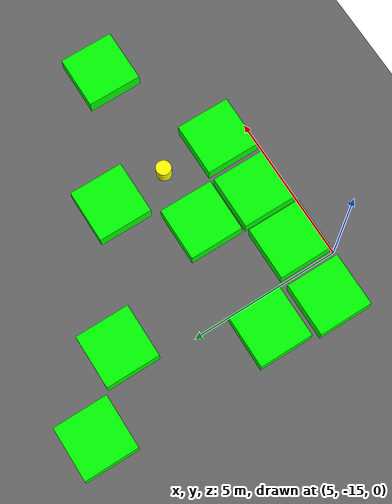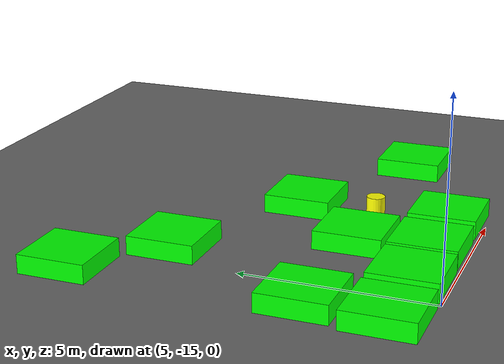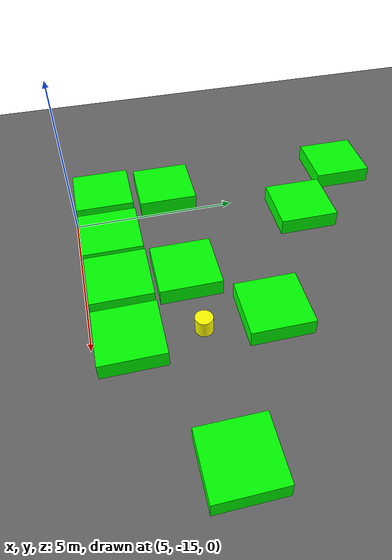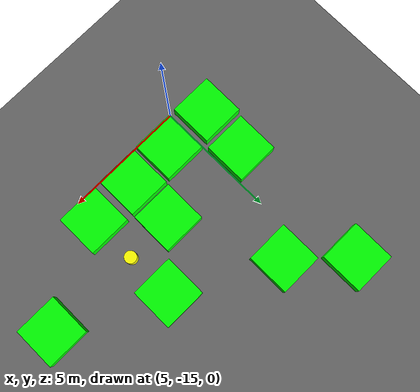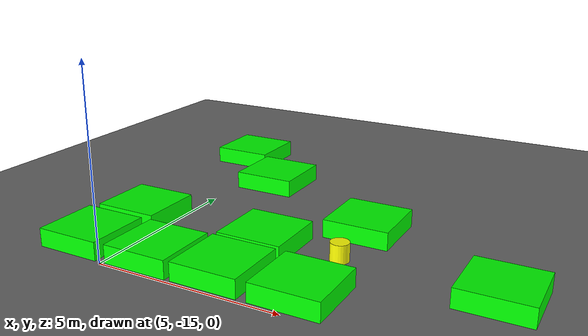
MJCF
<mujoco model="lvl5_deadend_obs10_dlong_depth1_seed1088">
    <compiler angle="degree" coordinate="local" inertiafromgeom="true"/>
    <option integrator="RK4" timestep="0.01"/>

    <asset>
        <texture builtin="gradient" height="100" rgb1="0.6 0.8 1" rgb2="0 0 0" type="skybox" width="100"/>
        <texture name="floor_texture" type="2d" builtin="checker" width="100" height="100" rgb1="0 0 0" rgb2="0.8 0.8 0.8"/>
        <material name="MatPlane" reflectance="0.5" shininess="1" specular="1" texrepeat="10 10" texture="floor_texture"/>
    </asset>

    <!-- Excluding the contact between the agent and the goal, and the agent and the floor -->
    <contact>
        <exclude body1="agent" body2="goal"/>
        <exclude body1 = "agent" body2 = "floor"/>
    </contact>

    <extension>
        <plugin plugin = "mujoco.pid">
            <instance name = "pid1">
                <config key="kp" value="2"/>
                <config key="ki" value="0"/>
                <config key="kd" value="55"/>
            </instance>
        </plugin>
    </extension>

    <worldbody>
        <light cutoff="100" diffuse="1 1 1" dir="-0 0 -1.3" directional="true" exponent="1" pos="0 0 1.3" specular=".1 .1 .1"/>
        <body name="floor" pos="0 0 0">
            <geom name="floor_geom" type="plane" size="20 20 0.1" material="MatPlane"/>
        </body>

                <body name="goal" pos="0.0000 0.0000 0">
            <geom name="goal_geom" type="plane" size="0.5 0.5 1" pos="0 0 0" rgba="1 0 0 1"/>
        </body>

                <body name="agent" pos="10.0000 -12.0000 0.250">
            <joint name="j1" type="slide" axis ="1 0 0 "/>
            <joint name="j2" type="slide" axis ="0 1 0 "/>
            <geom name="agent_geom" type="cylinder" size="0.25 0.25 0.250" rgba="1 1 0 1"/>
        </body>

        <body name="obstacle1" pos="4.0067 -5.9994 0.250">  <geom name="obstacle1_geom" type="box" size="0.9000 0.9000 0.250" rgba="0 1 0 1"/></body>
        <body name="obstacle2" pos="5.9673 -7.9043 0.250">  <geom name="obstacle2_geom" type="box" size="0.9000 0.9000 0.250" rgba="0 1 0 1"/></body>
        <body name="obstacle3" pos="9.9280 -10.0495 0.250">  <geom name="obstacle3_geom" type="box" size="0.9000 0.9000 0.250" rgba="0 1 0 1"/></body>
        <body name="obstacle4" pos="4.0609 -12.0303 0.250">  <geom name="obstacle4_geom" type="box" size="0.9000 0.9000 0.250" rgba="0 1 0 1"/></body>
        <body name="obstacle5" pos="7.9521 -12.0823 0.250">  <geom name="obstacle5_geom" type="box" size="0.9000 0.9000 0.250" rgba="0 1 0 1"/></body>
        <body name="obstacle6" pos="13.9380 -12.0713 0.250">  <geom name="obstacle6_geom" type="box" size="0.9000 0.9000 0.250" rgba="0 1 0 1"/></body>
        <body name="obstacle7" pos="3.9127 -14.0499 0.250">  <geom name="obstacle7_geom" type="box" size="0.9000 0.9000 0.250" rgba="0 1 0 1"/></body>
        <body name="obstacle8" pos="5.9972 -14.0266 0.250">  <geom name="obstacle8_geom" type="box" size="0.9000 0.9000 0.250" rgba="0 1 0 1"/></body>
        <body name="obstacle9" pos="7.9368 -14.0053 0.250">  <geom name="obstacle9_geom" type="box" size="0.9000 0.9000 0.250" rgba="0 1 0 1"/></body>
        <body name="obstacle10" pos="10.0036 -13.9972 0.250">  <geom name="obstacle10_geom" type="box" size="0.9000 0.9000 0.250" rgba="0 1 0 1"/></body>

    </worldbody>

    <sensor>
<!-- SENSORS -->

        <distance name="dist1" geom1="agent_geom" geom2="obstacle1_geom" cutoff="1.5"/>
        <distance name="dist2" geom1="agent_geom" geom2="obstacle2_geom" cutoff="1.5"/>
        <distance name="dist3" geom1="agent_geom" geom2="obstacle3_geom" cutoff="1.5"/>
        <distance name="dist4" geom1="agent_geom" geom2="obstacle4_geom" cutoff="1.5"/>
        <distance name="dist5" geom1="agent_geom" geom2="obstacle5_geom" cutoff="1.5"/>
        <distance name="dist6" geom1="agent_geom" geom2="obstacle6_geom" cutoff="1.5"/>
        <distance name="dist7" geom1="agent_geom" geom2="obstacle7_geom" cutoff="1.5"/>
        <distance name="dist8" geom1="agent_geom" geom2="obstacle8_geom" cutoff="1.5"/>
        <distance name="dist9" geom1="agent_geom" geom2="obstacle9_geom" cutoff="1.5"/>
        <distance name="dist10" geom1="agent_geom" geom2="obstacle10_geom" cutoff="1.5"/>
</sensor>

    <actuator>
        <plugin joint="j1" plugin="mujoco.pid" instance="pid1" />
        <plugin joint="j2" plugin="mujoco.pid" instance="pid1"/>
    </actuator>
</mujoco>
